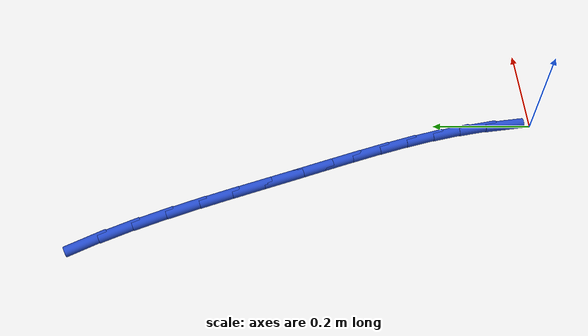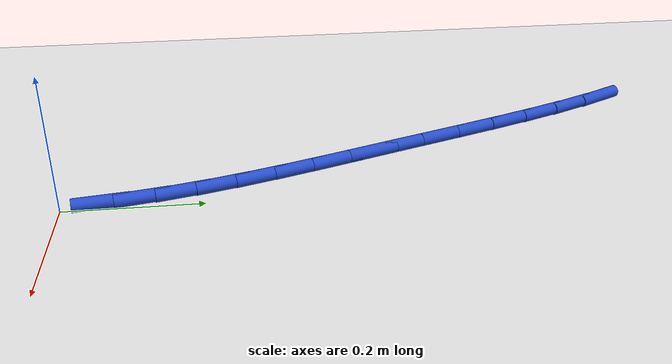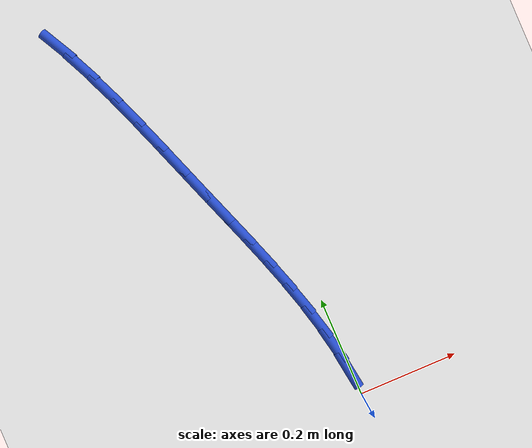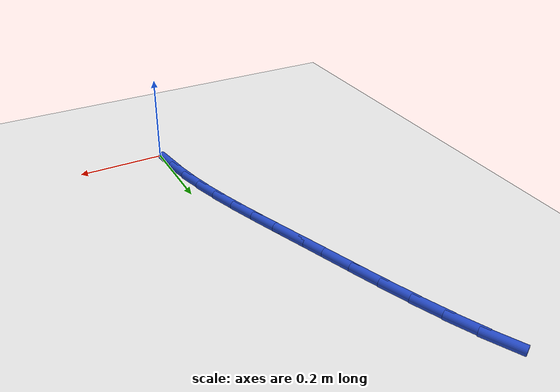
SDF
<sdf version="1.6">
 <world name="default">
  <model name="ground_plane">
   <static>1</static>
   <link name="link">
    <collision name="collision">
     <geometry><plane><normal>0 0 1</normal><size>100 100</size></plane></geometry>
     <surface><friction><ode><mu>100</mu><mu2>50</mu2></ode></friction></surface>
    </collision>
    <visual name="visual">
     <cast_shadows>0</cast_shadows>
     <geometry><plane><normal>0 0 1</normal><size>100 100</size></plane></geometry>
     <material>
      <script><uri>file://media/materials/scripts/gazebo.material</uri><name>Gazebo/WhiteGlow</name></script>
     </material>
    </visual>
   </link>
  </model>
  <model name="line">
   <link name="link_1">
    <pose>-0.0042322418094992995 0.05647736649026187 0.01 0 1.57 -1.4268868047504373</pose>
    <collision name="collision">
     <geometry><cylinder><radius>0.01</radius><length>0.08</length></cylinder></geometry>
    </collision>
    <visual name="visual">
     <material>
      <script><name>Gazebo/Blue</name><uri>file://media/materials/scripts/gazebo.material</uri></script>
     </material>
     <geometry><cylinder><radius>0.01</radius><length>0.08</length></cylinder></geometry>
    </visual>
   </link>
   <link name="link_2">
    <pose>-0.012323894455863101 0.11231603522424166 0.01 0 1.57 -1.36686521086436</pose>
    <collision name="collision">
     <geometry><cylinder><radius>0.01</radius><length>0.08</length></cylinder></geometry>
    </collision>
    <visual name="visual">
     <material>
      <script><name>Gazebo/Blue</name><uri>file://media/materials/scripts/gazebo.material</uri></script>
     </material>
     <geometry><cylinder><radius>0.01</radius><length>0.08</length></cylinder></geometry>
    </visual>
   </link>
   <link name="link_3">
    <pose>-0.023793056750000832 0.16777459968039865 0.01 0 1.57 -1.3168153084266525</pose>
    <collision name="collision">
     <geometry><cylinder><radius>0.01</radius><length>0.08</length></cylinder></geometry>
    </collision>
    <visual name="visual">
     <material>
      <script><name>Gazebo/Blue</name><uri>file://media/materials/scripts/gazebo.material</uri></script>
     </material>
     <geometry><cylinder><radius>0.01</radius><length>0.08</length></cylinder></geometry>
    </visual>
   </link>
   <link name="link_4">
    <pose>-0.038157827502821866 0.22311165333719232 0.01 0 1.57 -1.277087968680704</pose>
    <collision name="collision">
     <geometry><cylinder><radius>0.01</radius><length>0.08</length></cylinder></geometry>
    </collision>
    <visual name="visual">
     <material>
      <script><name>Gazebo/Blue</name><uri>file://media/materials/scripts/gazebo.material</uri></script>
     </material>
     <geometry><cylinder><radius>0.01</radius><length>0.08</length></cylinder></geometry>
    </visual>
   </link>
   <link name="link_5">
    <pose>-0.05493630552523554 0.278585789673082 0.01 0 1.57 -1.2476447417274994</pose>
    <collision name="collision">
     <geometry><cylinder><radius>0.01</radius><length>0.08</length></cylinder></geometry>
    </collision>
    <visual name="visual">
     <material>
      <script><name>Gazebo/Blue</name><uri>file://media/materials/scripts/gazebo.material</uri></script>
     </material>
     <geometry><cylinder><radius>0.01</radius><length>0.08</length></cylinder></geometry>
    </visual>
   </link>
   <link name="link_6">
    <pose>-0.07364658962815127 0.33445560216652725 0.01 0 1.57 -1.2281958238513628</pose>
    <collision name="collision">
     <geometry><cylinder><radius>0.01</radius><length>0.08</length></cylinder></geometry>
    </collision>
    <visual name="visual">
     <material>
      <script><name>Gazebo/Blue</name><uri>file://media/materials/scripts/gazebo.material</uri></script>
     </material>
     <geometry><cylinder><radius>0.01</radius><length>0.08</length></cylinder></geometry>
    </visual>
   </link>
   <link name="link_7">
    <pose>-0.09380677862247842 0.3909796842959873 0.01 0 1.57 -1.218308646978291</pose>
    <collision name="collision">
     <geometry><cylinder><radius>0.01</radius><length>0.08</length></cylinder></geometry>
    </collision>
    <visual name="visual">
     <material>
      <script><name>Gazebo/Blue</name><uri>file://media/materials/scripts/gazebo.material</uri></script>
     </material>
     <geometry><cylinder><radius>0.01</radius><length>0.08</length></cylinder></geometry>
    </visual>
   </link>
   <link name="link_8">
    <pose>-0.11493497131912629 0.44841662953992145 0.01 0 1.57 -1.2174749133104823</pose>
    <collision name="collision">
     <geometry><cylinder><radius>0.01</radius><length>0.08</length></cylinder></geometry>
    </collision>
    <visual name="visual">
     <material>
      <script><name>Gazebo/Blue</name><uri>file://media/materials/scripts/gazebo.material</uri></script>
     </material>
     <geometry><cylinder><radius>0.01</radius><length>0.08</length></cylinder></geometry>
    </visual>
   </link>
   <link name="link_9">
    <pose>-0.1365494811266258 0.5070247704623012 0.01 0 1.57 -1.2213574794344901</pose>
    <collision name="collision">
     <geometry><cylinder><radius>0.01</radius><length>0.08</length></cylinder></geometry>
    </collision>
    <visual name="visual">
     <material>
      <script><name>Gazebo/Blue</name><uri>file://media/materials/scripts/gazebo.material</uri></script>
     </material>
     <geometry><cylinder><radius>0.01</radius><length>0.08</length></cylinder></geometry>
    </visual>
   </link>
   <link name="link_10">
    <pose>-0.15834751331046487 0.5668449373223235 0.01 0 1.57 -1.2191603056132394</pose>
    <collision name="collision">
     <geometry><cylinder><radius>0.01</radius><length>0.08</length></cylinder></geometry>
    </collision>
    <visual name="visual">
     <material>
      <script><name>Gazebo/Blue</name><uri>file://media/materials/scripts/gazebo.material</uri></script>
     </material>
     <geometry><cylinder><radius>0.01</radius><length>0.08</length></cylinder></geometry>
    </visual>
   </link>
   <link name="link_11">
    <pose>-0.1805296599650467 0.62730592695662 0.01 0 1.57 -1.2091870854697253</pose>
    <collision name="collision">
     <geometry><cylinder><radius>0.01</radius><length>0.08</length></cylinder></geometry>
    </collision>
    <visual name="visual">
     <material>
      <script><name>Gazebo/Blue</name><uri>file://media/materials/scripts/gazebo.material</uri></script>
     </material>
     <geometry><cylinder><radius>0.01</radius><length>0.08</length></cylinder></geometry>
    </visual>
   </link>
   <link name="link_12">
    <pose>-0.20338440912173575 0.6877296695775148 0.01 0 1.57 -1.1912653356692218</pose>
    <collision name="collision">
     <geometry><cylinder><radius>0.01</radius><length>0.08</length></cylinder></geometry>
    </collision>
    <visual name="visual">
     <material>
      <script><name>Gazebo/Blue</name><uri>file://media/materials/scripts/gazebo.material</uri></script>
     </material>
     <geometry><cylinder><radius>0.01</radius><length>0.08</length></cylinder></geometry>
    </visual>
   </link>
   <link name="link_13">
    <pose>-0.22720024881189638 0.7474380953973306 0.01 0 1.57 -1.1648437041899908</pose>
    <collision name="collision">
     <geometry><cylinder><radius>0.01</radius><length>0.08</length></cylinder></geometry>
    </collision>
    <visual name="visual">
     <material>
      <script><name>Gazebo/Blue</name><uri>file://media/materials/scripts/gazebo.material</uri></script>
     </material>
     <geometry><cylinder><radius>0.01</radius><length>0.08</length></cylinder></geometry>
    </visual>
   </link>
   <link name="link_14">
    <pose>-0.25226566706689296 0.8057531346283913 0.01 0 1.57 -1.128977150036481</pose>
    <collision name="collision">
     <geometry><cylinder><radius>0.01</radius><length>0.08</length></cylinder></geometry>
    </collision>
    <visual name="visual">
     <material>
      <script><name>Gazebo/Blue</name><uri>file://media/materials/scripts/gazebo.material</uri></script>
     </material>
     <geometry><cylinder><radius>0.01</radius><length>0.08</length></cylinder></geometry>
    </visual>
   </link>
   <link name="link_15">
    <pose>-0.27886915191808975 0.8619967174830193 0.01 0 1.57 -1.08229732804262</pose>
    <collision name="collision">
     <geometry><cylinder><radius>0.01</radius><length>0.08</length></cylinder></geometry>
    </collision>
    <visual name="visual">
     <material>
      <script><name>Gazebo/Blue</name><uri>file://media/materials/scripts/gazebo.material</uri></script>
     </material>
     <geometry><cylinder><radius>0.01</radius><length>0.08</length></cylinder></geometry>
    </visual>
   </link>
  </model>
 </world>
</sdf>
